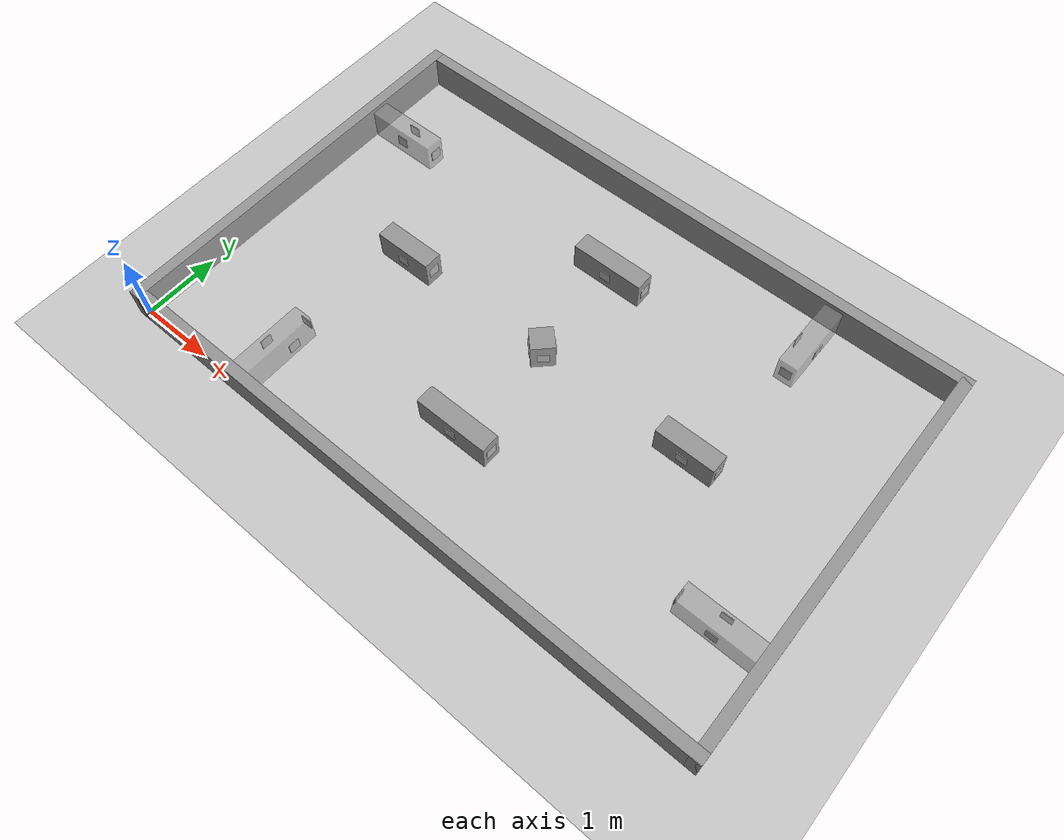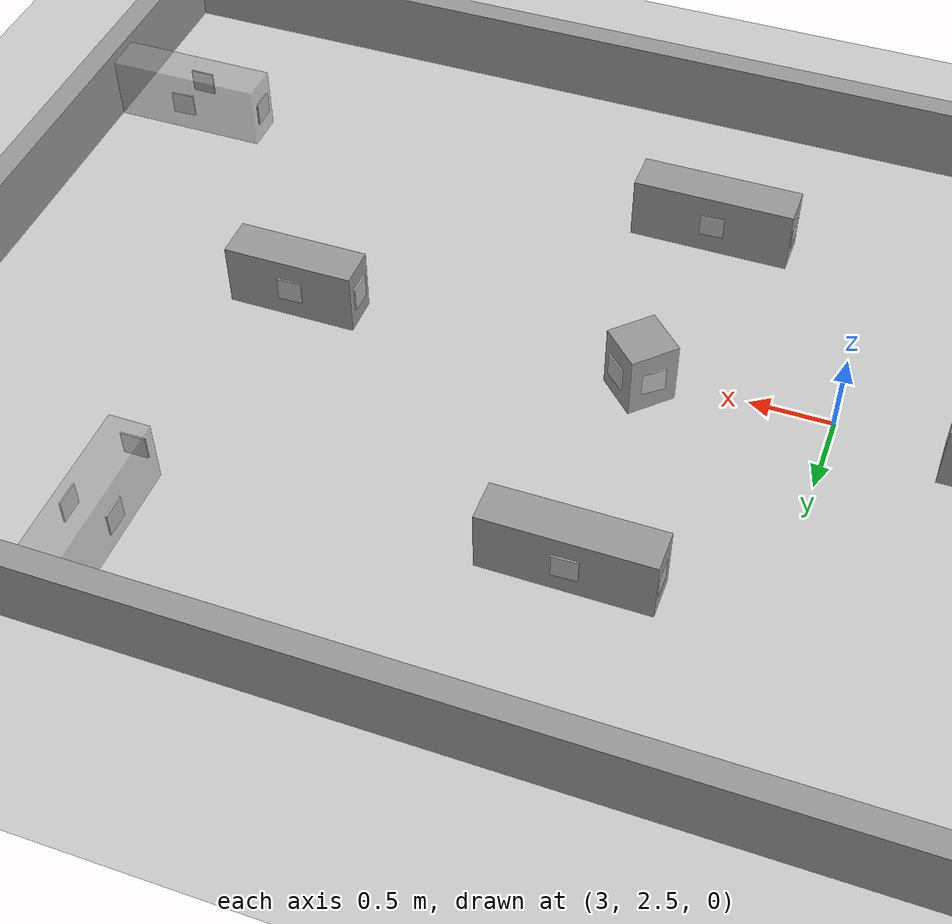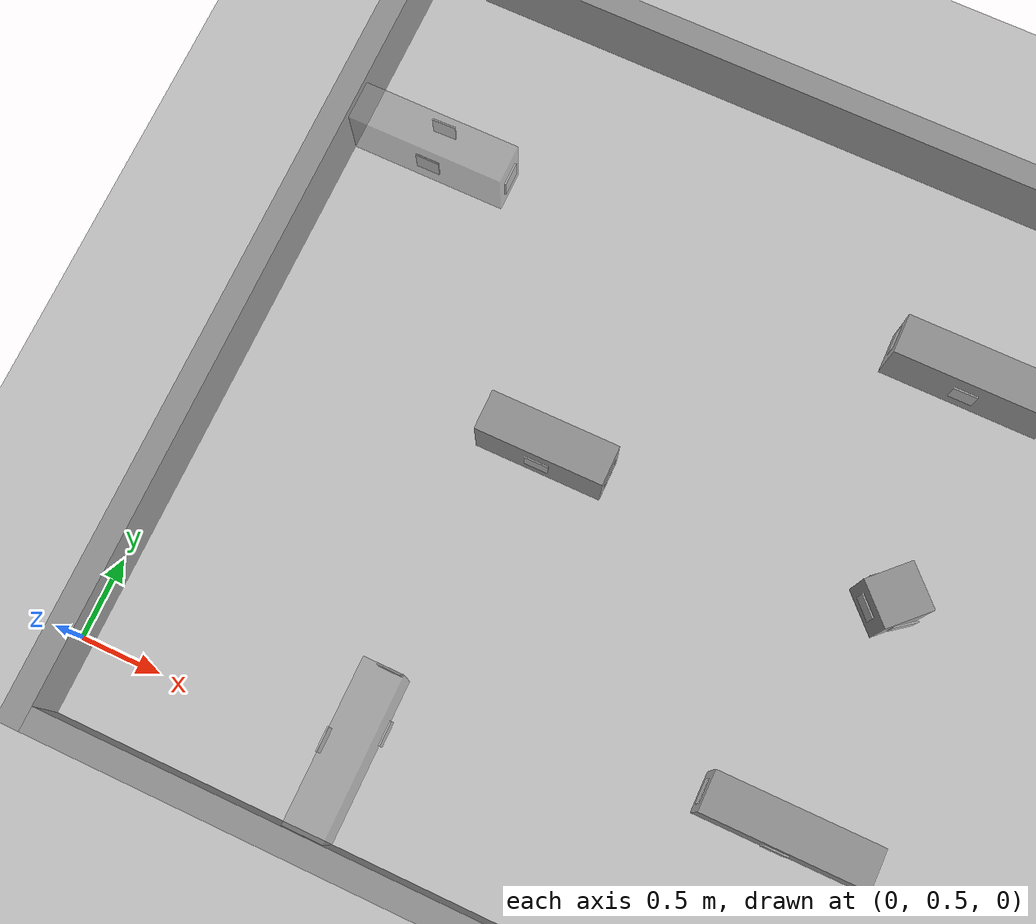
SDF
<sdf version="1.6">
 <world name="default">
  <light name="sun" type="directional">
   <pose>0 0 10 0 -0 0</pose>
   <diffuse>0.8 0.8 0.8 1</diffuse>
   <specular>0.1 0.1 0.1 1</specular>
   <attenuation>
    <range>1000</range>
    <constant>0.9</constant>
    <linear>0.01</linear>
    <quadratic>0.001</quadratic>
   </attenuation>
   <direction>-0.5 0.5 -1</direction>
  </light>
  <model name="ground_plane">
   <static>1</static>
   <link name="link">
    <collision name="collision">
     <geometry><plane><normal>0 0 1</normal><size>100 100</size></plane></geometry>
     <surface><friction><ode><mu>100</mu><mu2>50</mu2></ode></friction></surface>
    </collision>
    <visual name="visual">
     <cast_shadows>0</cast_shadows>
     <geometry><plane><normal>0 0 1</normal><size>100 100</size></plane></geometry>
     <material>
      <script><uri>file://media/materials/scripts/gazebo.material</uri><name>Gazebo/Grey</name></script>
     </material>
    </visual>
   </link>
  </model>
  <gravity>0 0 -9.8</gravity>
  <magnetic_field>6e-06 2.3e-05 -4.2e-05</magnetic_field>
  <atmosphere type="adiabatic"/>
  <physics name="default_physics" default="0" type="ode">
   <max_step_size>0.001</max_step_size>
   <real_time_factor>1</real_time_factor>
   <real_time_update_rate>1000</real_time_update_rate>
  </physics>
  <scene><ambient>0.4 0.4 0.4 1</ambient><background>0.7 0.7 0.7 1</background><shadows>1</shadows></scene>
  <spherical_coordinates>
   <surface_model>EARTH_WGS84</surface_model>
   <latitude_deg>0</latitude_deg>
   <longitude_deg>0</longitude_deg>
   <elevation>0</elevation>
   <heading_deg>0</heading_deg>
  </spherical_coordinates>
  <model name="2020map_originsize">
   <pose>4.125 2.61211 0 0 -0 0</pose>
   <link name="Wall_0">
    <collision name="Wall_0_Collision">
     <geometry><box><size>5.4 0.15 0.46</size></box></geometry>
     <pose>0 0 0.23 0 -0 0</pose>
    </collision>
    <visual name="Wall_0_Visual">
     <pose>0 0 0.23 0 -0 0</pose>
     <geometry><box><size>5.4 0.15 0.46</size></box></geometry>
     <material>
      <script><uri>file://media/materials/scripts/gazebo.material</uri><name>Gazebo/Grey</name></script>
      <ambient>1 1 1 1</ambient>
     </material>
    </visual>
    <pose>-4.125 0 0 0 0 -1.5708</pose>
   </link>
   <link name="Wall_1">
    <collision name="Wall_1_Collision">
     <geometry><box><size>8.4 0.15 0.46</size></box></geometry>
     <pose>0 0 0.23 0 -0 0</pose>
    </collision>
    <visual name="Wall_1_Visual">
     <pose>0 0 0.23 0 -0 0</pose>
     <geometry><box><size>8.4 0.15 0.46</size></box></geometry>
     <material>
      <script><uri>file://media/materials/scripts/gazebo.material</uri><name>Gazebo/Grey</name></script>
      <ambient>1 1 1 1</ambient>
     </material>
    </visual>
    <pose>0 -2.625 0 0 -0 0</pose>
   </link>
   <link name="Wall_11">
    <collision name="Wall_11_Collision">
     <geometry><box><size>1 0.25 0.4</size></box></geometry>
     <pose>0 0 0.2 0 -0 0</pose>
    </collision>
    <visual name="Wall_11_Visual">
     <pose>0 0 0.2 0 -0 0</pose>
     <geometry><box><size>1 0.25 0.4</size></box></geometry>
     <material>
      <script><uri>file://media/materials/scripts/gazebo.material</uri><name>Gazebo/GreyTransparent</name></script>
      <ambient>1 1 1 1</ambient>
     </material>
    </visual>
    <pose>-2.425 -2.05 0 0 -0 1.5708</pose>
   </link>
   <link name="Wall_13">
    <collision name="Wall_13_Collision">
     <geometry><box><size>1 0.25 0.4</size></box></geometry>
     <pose>0 0 0.2 0 -0 0</pose>
    </collision>
    <visual name="Wall_13_Visual">
     <pose>0 0 0.2 0 -0 0</pose>
     <geometry><box><size>1 0.25 0.4</size></box></geometry>
     <material>
      <script><uri>file://media/materials/scripts/gazebo.material</uri><name>Gazebo/Grey</name></script>
      <ambient>1 1 1 1</ambient>
     </material>
    </visual>
    <pose>-0.05 1.425 0 0 -0 0</pose>
   </link>
   <link name="Wall_15">
    <collision name="Wall_15_Collision">
     <geometry><box><size>1 0.25 0.4</size></box></geometry>
     <pose>0 0 0.2 0 -0 0</pose>
    </collision>
    <visual name="Wall_15_Visual">
     <pose>0 0 0.2 0 -0 0</pose>
     <geometry><box><size>1 0.25 0.4</size></box></geometry>
     <material>
      <script><uri>file://media/materials/scripts/gazebo.material</uri><name>Gazebo/Grey</name></script>
      <ambient>1 1 1 1</ambient>
     </material>
    </visual>
    <pose>-0.05 -1.425 0 0 -0 0</pose>
   </link>
   <link name="Wall_17">
    <collision name="Wall_17_Collision">
     <geometry><box><size>0.8 0.25 0.4</size></box></geometry>
     <pose>0 0 0.2 0 -0 0</pose>
    </collision>
    <visual name="Wall_17_Visual">
     <pose>0 0 0.2 0 -0 0</pose>
     <geometry><box><size>0.8 0.25 0.4</size></box></geometry>
     <material>
      <script><uri>file://media/materials/scripts/gazebo.material</uri><name>Gazebo/Grey</name></script>
      <ambient>1 1 1 1</ambient>
     </material>
    </visual>
    <pose>-2.15 0 0 0 -0 0</pose>
   </link>
   <link name="Wall_19">
    <collision name="Wall_19_Collision">
     <geometry><box><size>0.8 0.25 0.4</size></box></geometry>
     <pose>0 0 0.2 0 -0 0</pose>
    </collision>
    <visual name="Wall_19_Visual">
     <pose>0 0 0.2 0 -0 0</pose>
     <geometry><box><size>0.8 0.25 0.4</size></box></geometry>
     <material>
      <script><uri>file://media/materials/scripts/gazebo.material</uri><name>Gazebo/Grey</name></script>
      <ambient>1 1 1 1</ambient>
     </material>
    </visual>
    <pose>2.15 0 0 0 -0 0</pose>
   </link>
   <link name="Wall_2">
    <collision name="Wall_2_Collision">
     <geometry><box><size>5.4 0.15 0.46</size></box></geometry>
     <pose>0 0 0.23 0 -0 0</pose>
    </collision>
    <visual name="Wall_2_Visual">
     <pose>0 0 0.23 0 -0 0</pose>
     <geometry><box><size>5.4 0.15 0.46</size></box></geometry>
     <material>
      <script><uri>file://media/materials/scripts/gazebo.material</uri><name>Gazebo/Grey</name></script>
      <ambient>1 1 1 1</ambient>
     </material>
    </visual>
    <pose>4.125 0 0 0 -0 1.5708</pose>
   </link>
   <link name="Wall_21">
    <collision name="Wall_21_Collision">
     <geometry><box><size>0.303364 0.3 0.4</size></box></geometry>
     <pose>0 0 0.2 0 -0 0</pose>
    </collision>
    <visual name="Wall_21_Visual">
     <pose>0 0 0.2 0 -0 0</pose>
     <geometry><box><size>0.303364 0.3 0.4</size></box></geometry>
     <material>
      <script><uri>file://media/materials/scripts/gazebo.material</uri><name>Gazebo/Grey</name></script>
      <ambient>1 1 1 1</ambient>
     </material>
    </visual>
    <pose>0.001 0.001 0 0 -0 0.785398</pose>
   </link>
   <link name="Wall_3">
    <collision name="Wall_3_Collision">
     <geometry><box><size>8.4 0.15 0.46</size></box></geometry>
     <pose>0 0 0.23 0 -0 0</pose>
    </collision>
    <visual name="Wall_3_Visual">
     <pose>0 0 0.23 0 -0 0</pose>
     <geometry><box><size>8.4 0.15 0.46</size></box></geometry>
     <material>
      <script><uri>file://media/materials/scripts/gazebo.material</uri><name>Gazebo/Grey</name></script>
      <ambient>1 1 1 1</ambient>
     </material>
    </visual>
    <pose>0 2.625 0 0 -0 3.14159</pose>
   </link>
   <link name="Wall_5">
    <collision name="Wall_5_Collision">
     <geometry><box><size>1 0.25 0.4</size></box></geometry>
     <pose>0 0 0.2 0 -0 0</pose>
    </collision>
    <visual name="Wall_5_Visual">
     <pose>0 0 0.2 0 -0 0</pose>
     <geometry><box><size>1 0.25 0.4</size></box></geometry>
     <material>
      <script><uri>file://media/materials/scripts/gazebo.material</uri><name>Gazebo/GreyTransparent</name></script>
      <ambient>1 1 1 1</ambient>
     </material>
    </visual>
    <pose>-3.55 1.425 0 0 -0 0</pose>
   </link>
   <link name="Wall_7">
    <collision name="Wall_7_Collision">
     <geometry><box><size>1 0.25 0.4</size></box></geometry>
     <pose>0 0 0.2 0 -0 0</pose>
    </collision>
    <visual name="Wall_7_Visual">
     <pose>0 0 0.2 0 -0 0</pose>
     <geometry><box><size>1 0.25 0.4</size></box></geometry>
     <material>
      <script><uri>file://media/materials/scripts/gazebo.material</uri><name>Gazebo/GreyTransparent</name></script>
      <ambient>1 1 1 1</ambient>
     </material>
    </visual>
    <pose>2.425 2.05 0 0 0 -1.5708</pose>
   </link>
   <link name="Wall_9">
    <collision name="Wall_9_Collision">
     <geometry><box><size>1 0.25 0.4</size></box></geometry>
     <pose>0 0 0.2 0 -0 0</pose>
    </collision>
    <visual name="Wall_9_Visual">
     <pose>0 0 0.2 0 -0 0</pose>
     <geometry><box><size>1 0.25 0.4</size></box></geometry>
     <material>
      <script><uri>file://media/materials/scripts/gazebo.material</uri><name>Gazebo/GreyTransparent</name></script>
      <ambient>1 1 1 1</ambient>
     </material>
    </visual>
    <pose>3.55 -1.425 0 0 -0 3.14159</pose>
   </link>
   <static>1</static>
  </model>
  <audio><device>default</device></audio>
  <model name="visualtag_01">
   <link name="main">
    <visual name="main_Visual">
     <geometry><box><size>0.15 0.15 0.01</size></box></geometry>
     <material>
      <script>
       <uri>model://visualtag_01/materials/scripts</uri>
       <uri>model://visualtag_01/materials/textures</uri>
       <name>visualtag_01</name>
      </script>
     </material>
    </visual>
   </link>
   <static>1</static>
   <pose>1.9669 2.48405 0.199999 -0.920098 1.57 0.654897</pose>
  </model>
  <model name="visualtag_02">
   <link name="main">
    <visual name="main_Visual">
     <geometry><box><size>0.15 0.15 0.01</size></box></geometry>
     <material>
      <script>
       <uri>model://visualtag_02/materials/scripts</uri>
       <uri>model://visualtag_02/materials/textures</uri>
       <name>visualtag_02</name>
      </script>
     </material>
    </visual>
   </link>
   <static>1</static>
   <pose>1.57585 2.6131 0.2 3.14159 -1.57079 3.14159</pose>
  </model>
  <model name="visualtag_03">
   <link name="main">
    <visual name="main_Visual">
     <geometry><box><size>0.15 0.15 0.01</size></box></geometry>
     <material>
      <script>
       <uri>model://visualtag_03/materials/scripts</uri>
       <uri>model://visualtag_03/materials/textures</uri>
       <name>visualtag_03</name>
      </script>
     </material>
    </visual>
   </link>
   <static>1</static>
   <pose>1.96854 2.73454 0.2 0.046956 1.56575 -1.49148</pose>
  </model>
  <model name="visualtag_04">
   <link name="main">
    <visual name="main_Visual">
     <geometry><box><size>0.15 0.15 0.01</size></box></geometry>
     <material>
      <script>
       <uri>model://visualtag_04/materials/scripts</uri>
       <uri>model://visualtag_04/materials/textures</uri>
       <name>visualtag_04</name>
      </script>
     </material>
    </visual>
   </link>
   <static>1</static>
   <pose>2.37278 2.61199 0.2 -1.33444 1.56615 1.80715</pose>
  </model>
  <model name="visualtag_05">
   <link name="main">
    <visual name="main_Visual">
     <geometry><box><size>0.15 0.15 0.01</size></box></geometry>
     <material>
      <script>
       <uri>model://visualtag_05/materials/scripts</uri>
       <uri>model://visualtag_05/materials/textures</uri>
       <name>visualtag_05</name>
      </script>
     </material>
    </visual>
   </link>
   <static>1</static>
   <pose>4.05833 1.05621 0.2 -0.920098 1.57 0.654897</pose>
  </model>
  <model name="visualtag_06">
   <link name="main">
    <visual name="main_Visual">
     <geometry><box><size>0.15 0.15 0.01</size></box></geometry>
     <material>
      <script>
       <uri>model://visualtag_06/materials/scripts</uri>
       <uri>model://visualtag_06/materials/textures</uri>
       <name>visualtag_06</name>
      </script>
     </material>
    </visual>
   </link>
   <static>1</static>
   <pose>3.57507 1.18674 0.2 3.14159 -1.57079 3.14159</pose>
  </model>
  <model name="visualtag_07">
   <link name="main">
    <visual name="main_Visual">
     <geometry><box><size>0.15 0.15 0.01</size></box></geometry>
     <material>
      <script>
       <uri>model://visualtag_07/materials/scripts</uri>
       <uri>model://visualtag_07/materials/textures</uri>
       <name>visualtag_07</name>
      </script>
     </material>
    </visual>
   </link>
   <static>1</static>
   <pose>4.06361 1.30993 0.2000 0.046951 1.56575 -1.49148</pose>
  </model>
  <model name="visualtag_08">
   <link name="main">
    <visual name="main_Visual">
     <geometry><box><size>0.15 0.15 0.01</size></box></geometry>
     <material>
      <script>
       <uri>model://visualtag_08/materials/scripts</uri>
       <uri>model://visualtag_08/materials/textures</uri>
       <name>visualtag_08</name>
      </script>
     </material>
    </visual>
   </link>
   <static>1</static>
   <pose>4.57562 1.18958 0.2000 -1.33444 1.56615 1.80715</pose>
  </model>
  <model name="visualtag_09">
   <link name="main">
    <visual name="main_Visual">
     <geometry><box><size>0.15 0.15 0.01</size></box></geometry>
     <material>
      <script>
       <uri>model://visualtag_09/materials/scripts</uri>
       <uri>model://visualtag_09/materials/textures</uri>
       <name>visualtag_09</name>
      </script>
     </material>
    </visual>
   </link>
   <static>1</static>
   <pose>4.06314 3.90381 0.2 -0.920098 1.57 0.654897</pose>
  </model>
  <model name="visualtag_10">
   <link name="main">
    <visual name="main_Visual">
     <geometry><box><size>0.15 0.15 0.01</size></box></geometry>
     <material>
      <script>
       <uri>model://visualtag_10/materials/scripts</uri>
       <uri>model://visualtag_10/materials/textures</uri>
       <name>visualtag_10</name>
      </script>
     </material>
    </visual>
   </link>
   <static>1</static>
   <pose>3.57775 4.05623 0.2 3.14159 -1.57079 3.14159</pose>
  </model>
  <model name="visualtag_11">
   <link name="main">
    <visual name="main_Visual">
     <geometry><box><size>0.15 0.15 0.01</size></box></geometry>
     <material>
      <script>
       <uri>model://visualtag_11/materials/scripts</uri>
       <uri>model://visualtag_11/materials/textures</uri>
       <name>visualtag_11</name>
      </script>
     </material>
    </visual>
   </link>
   <static>1</static>
   <pose>4.06765 4.16792 0.2000 0.046951 1.56575 -1.49148</pose>
  </model>
  <model name="visualtag_12">
   <link name="main">
    <visual name="main_Visual">
     <geometry><box><size>0.15 0.15 0.01</size></box></geometry>
     <material>
      <script>
       <uri>model://visualtag_12/materials/scripts</uri>
       <uri>model://visualtag_12/materials/textures</uri>
       <name>visualtag_12</name>
      </script>
     </material>
    </visual>
   </link>
   <static>1</static>
   <pose>4.58162 4.04042 0.2 -1.33444 1.56615 1.80715</pose>
  </model>
  <model name="visualtag_13">
   <link name="main">
    <visual name="main_Visual">
     <geometry><box><size>0.15 0.15 0.01</size></box></geometry>
     <material>
      <script>
       <uri>model://visualtag_13/materials/scripts</uri>
       <uri>model://visualtag_13/materials/textures</uri>
       <name>visualtag_13</name>
      </script>
     </material>
    </visual>
   </link>
   <static>1</static>
   <pose>6.26757 2.47881 0.2 -0.920098 1.57 0.654897</pose>
  </model>
  <model name="visualtag_14">
   <link name="main">
    <visual name="main_Visual">
     <geometry><box><size>0.15 0.15 0.01</size></box></geometry>
     <material>
      <script>
       <uri>model://visualtag_14/materials/scripts</uri>
       <uri>model://visualtag_14/materials/textures</uri>
       <name>visualtag_14</name>
      </script>
     </material>
    </visual>
   </link>
   <static>1</static>
   <pose>5.8698 2.61112 0.2 3.14159 -1.57079 3.14159</pose>
  </model>
  <model name="visualtag_15">
   <link name="main">
    <visual name="main_Visual">
     <geometry><box><size>0.15 0.15 0.01</size></box></geometry>
     <material>
      <script>
       <uri>model://visualtag_15/materials/scripts</uri>
       <uri>model://visualtag_15/materials/textures</uri>
       <name>visualtag_15</name>
      </script>
     </material>
    </visual>
   </link>
   <static>1</static>
   <pose>6.26978 2.74051 0.2 0.046953 1.56575 -1.49148</pose>
  </model>
  <model name="visualtag_16">
   <link name="main">
    <visual name="main_Visual">
     <geometry><box><size>0.15 0.15 0.01</size></box></geometry>
     <material>
      <script>
       <uri>model://visualtag_16/materials/scripts</uri>
       <uri>model://visualtag_16/materials/textures</uri>
       <name>visualtag_16</name>
      </script>
     </material>
    </visual>
   </link>
   <static>1</static>
   <pose>6.68002 2.61891 0.2 -1.33444 1.56615 1.80715</pose>
  </model>
  <model name="visualtag_17">
   <link name="main">
    <visual name="main_Visual">
     <geometry><box><size>0.15 0.15 0.01</size></box></geometry>
     <material>
      <script>
       <uri>model://visualtag_17/materials/scripts</uri>
       <uri>model://visualtag_17/materials/textures</uri>
       <name>visualtag_17</name>
      </script>
     </material>
    </visual>
   </link>
   <static>1</static>
   <pose>0.585956 3.91378 0.2 -0.920098 1.57 0.654897</pose>
  </model>
  <model name="visualtag_18">
   <link name="main">
    <visual name="main_Visual">
     <geometry><box><size>0.15 0.15 0.01</size></box></geometry>
     <material>
      <script>
       <uri>model://visualtag_18/materials/scripts</uri>
       <uri>model://visualtag_18/materials/textures</uri>
       <name>visualtag_18</name>
      </script>
     </material>
    </visual>
   </link>
   <static>1</static>
   <pose>1.08207 4.0368 0.2 3.14159 -1.57079 3.14159</pose>
  </model>
  <model name="visualtag_19">
   <link name="main">
    <visual name="main_Visual">
     <geometry><box><size>0.15 0.15 0.01</size></box></geometry>
     <material>
      <script>
       <uri>model://visualtag_19/materials/scripts</uri>
       <uri>model://visualtag_19/materials/textures</uri>
       <name>visualtag_19</name>
      </script>
     </material>
    </visual>
   </link>
   <static>1</static>
   <pose>0.577932 4.16484 0.2 0.046883 1.56575 -1.49155</pose>
  </model>
  <model name="visualtag_20">
   <link name="main">
    <visual name="main_Visual">
     <geometry><box><size>0.15 0.15 0.01</size></box></geometry>
     <material>
      <script>
       <uri>model://visualtag_20/materials/scripts</uri>
       <uri>model://visualtag_20/materials/textures</uri>
       <name>visualtag_20</name>
      </script>
     </material>
    </visual>
   </link>
   <static>1</static>
   <pose>6.68648 4.65294 0.2 -1.33444 1.56615 1.80715</pose>
  </model>
  <model name="visualtag_21">
   <link name="main">
    <visual name="main_Visual">
     <geometry><box><size>0.15 0.15 0.01</size></box></geometry>
     <material>
      <script>
       <uri>model://visualtag_21/materials/scripts</uri>
       <uri>model://visualtag_21/materials/textures</uri>
       <name>visualtag_21</name>
      </script>
     </material>
    </visual>
   </link>
   <static>1</static>
   <pose>6.55294 4.16275 0.200003 -0.920098 1.57 0.654897</pose>
  </model>
  <model name="visualtag_22">
   <link name="main">
    <visual name="main_Visual">
     <geometry><box><size>0.15 0.15 0.01</size></box></geometry>
     <material>
      <script>
       <uri>model://visualtag_22/materials/scripts</uri>
       <uri>model://visualtag_22/materials/textures</uri>
       <name>visualtag_22</name>
      </script>
     </material>
    </visual>
   </link>
   <static>1</static>
   <pose>6.41289 4.64833 0.199993 3.14159 -1.57079 3.14159</pose>
  </model>
  <model name="visualtag_23">
   <link name="main">
    <visual name="main_Visual">
     <geometry><box><size>0.15 0.15 0.01</size></box></geometry>
     <material>
      <script>
       <uri>model://visualtag_23/materials/scripts</uri>
       <uri>model://visualtag_23/materials/textures</uri>
       <name>visualtag_23</name>
      </script>
     </material>
    </visual>
   </link>
   <static>1</static>
   <pose>7.6878 1.31718 0.2 0.046881 1.56575 -1.49155</pose>
  </model>
  <model name="visualtag_24">
   <link name="main">
    <visual name="main_Visual">
     <geometry><box><size>0.15 0.15 0.01</size></box></geometry>
     <material>
      <script>
       <uri>model://visualtag_24/materials/scripts</uri>
       <uri>model://visualtag_24/materials/textures</uri>
       <name>visualtag_24</name>
      </script>
     </material>
    </visual>
   </link>
   <static>1</static>
   <pose>7.17202 1.18411 0.2 -1.33444 1.56615 1.80715</pose>
  </model>
  <model name="visualtag_25">
   <link name="main">
    <visual name="main_Visual">
     <geometry><box><size>0.15 0.15 0.01</size></box></geometry>
     <material>
      <script>
       <uri>model://visualtag_25/materials/scripts</uri>
       <uri>model://visualtag_25/materials/textures</uri>
       <name>visualtag_25</name>
      </script>
     </material>
    </visual>
   </link>
   <static>1</static>
   <pose>7.67141 1.05707 0.2 -0.920098 1.57 0.654897</pose>
  </model>
  <model name="visualtag_26">
   <link name="main">
    <visual name="main_Visual">
     <geometry><box><size>0.15 0.15 0.01</size></box></geometry>
     <material>
      <script>
       <uri>model://visualtag_26/materials/scripts</uri>
       <uri>model://visualtag_26/materials/textures</uri>
       <name>visualtag_26</name>
      </script>
     </material>
    </visual>
   </link>
   <static>1</static>
   <pose>1.55291 0.562479 0.2 3.14159 -1.57079 3.14159</pose>
  </model>
  <model name="visualtag_27">
   <link name="main">
    <visual name="main_Visual">
     <geometry><box><size>0.15 0.15 0.01</size></box></geometry>
     <material>
      <script>
       <uri>model://visualtag_27/materials/scripts</uri>
       <uri>model://visualtag_27/materials/textures</uri>
       <name>visualtag_27</name>
      </script>
     </material>
    </visual>
   </link>
   <static>1</static>
   <pose>1.7176 1.06342 0.2 3.10843 1.55787 1.53181</pose>
  </model>
  <model name="visualtag_28">
   <link name="main">
    <visual name="main_Visual">
     <geometry><box><size>0.15 0.15 0.01</size></box></geometry>
     <material>
      <script>
       <uri>model://visualtag_28/materials/scripts</uri>
       <uri>model://visualtag_28/materials/textures</uri>
       <name>visualtag_28</name>
      </script>
     </material>
    </visual>
   </link>
   <static>1</static>
   <pose>1.85306 0.734975 0.2 -1.33444 1.56615 1.80715</pose>
  </model>
  <model name="visualtag_29">
   <link name="main">
    <visual name="main_Visual">
     <geometry><box><size>0.15 0.15 0.01</size></box></geometry>
     <material>
      <script>
       <uri>model://visualtag_29/materials/scripts</uri>
       <uri>model://visualtag_29/materials/textures</uri>
       <name>visualtag_29</name>
      </script>
     </material>
    </visual>
   </link>
   <static>1</static>
   <pose>4.00862 2.50784 0.2 -0.12329 1.57 0.654893</pose>
  </model>
  <model name="visualtag_30">
   <link name="main">
    <visual name="main_Visual">
     <geometry><box><size>0.15 0.15 0.01</size></box></geometry>
     <material>
      <script>
       <uri>model://visualtag_30/materials/scripts</uri>
       <uri>model://visualtag_30/materials/textures</uri>
       <name>visualtag_30</name>
      </script>
     </material>
    </visual>
   </link>
   <static>1</static>
   <pose>4.01975 2.72208 0.20000 2.25415 -1.57079 -3.13734</pose>
  </model>
  <model name="visualtag_31">
   <link name="main">
    <visual name="main_Visual">
     <geometry><box><size>0.15 0.15 0.01</size></box></geometry>
     <material>
      <script>
       <uri>model://visualtag_31/materials/scripts</uri>
       <uri>model://visualtag_31/materials/textures</uri>
       <name>visualtag_31</name>
      </script>
     </material>
    </visual>
   </link>
   <static>1</static>
   <pose>4.24645 2.7232 0.2 0.845258 1.56575 -1.49154</pose>
  </model>
  <model name="visualtag_32">
   <link name="main">
    <visual name="main_Visual">
     <geometry><box><size>0.15 0.15 0.01</size></box></geometry>
     <material>
      <script>
       <uri>model://visualtag_32/materials/scripts</uri>
       <uri>model://visualtag_32/materials/textures</uri>
       <name>visualtag_32</name>
      </script>
     </material>
    </visual>
   </link>
   <static>1</static>
   <pose>4.24187 2.50059 0.2 -0.4224 1.56615 1.80715</pose>
  </model>
 </world>
</sdf>
